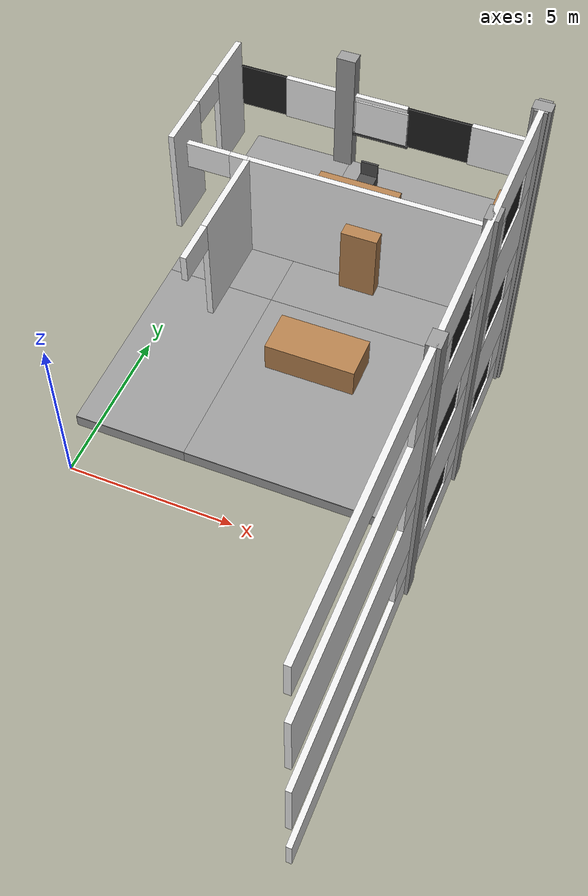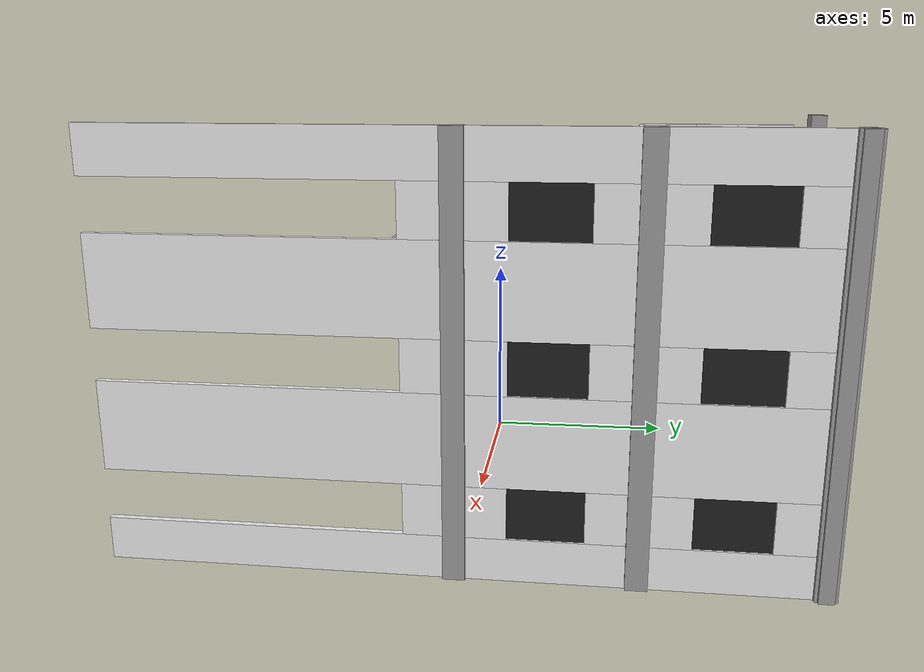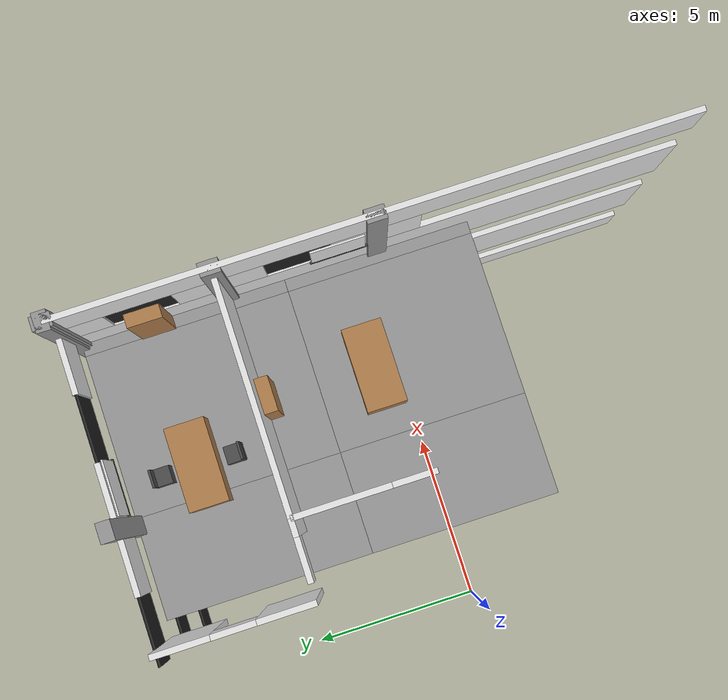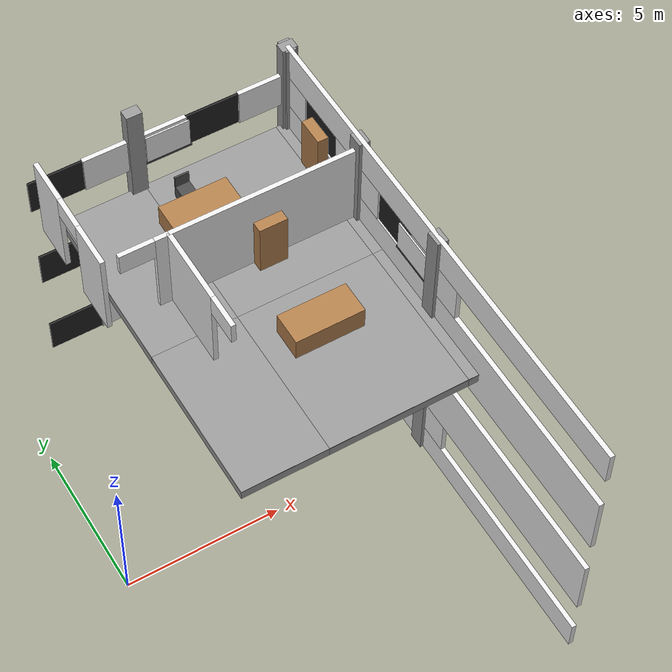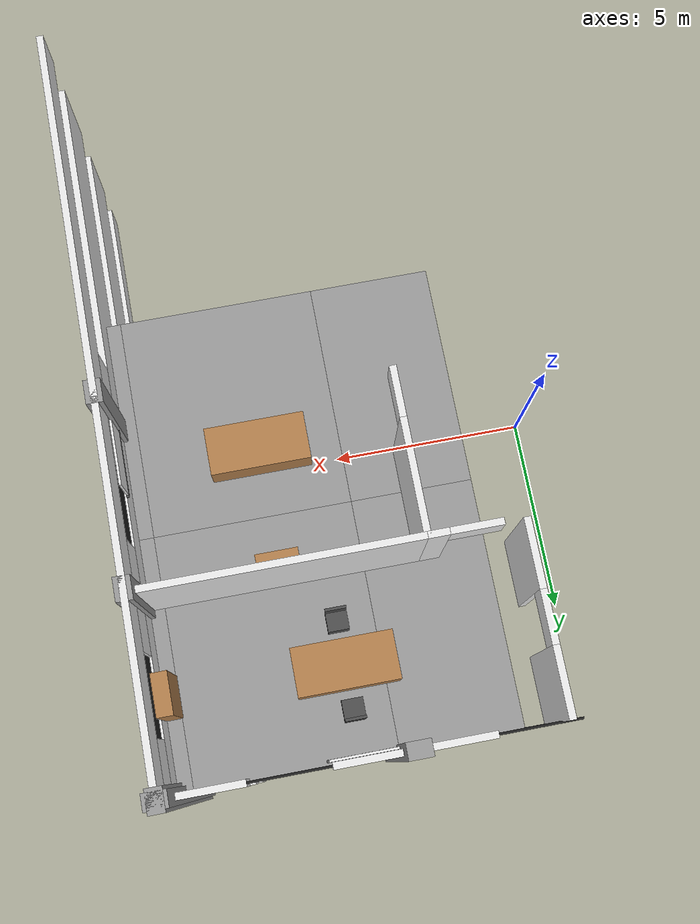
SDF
<sdf version="1.7">
 <world name="default">
  <model name="building_shell">
   <static>1</static>
   <link name="wNm0_3">
    <pose>5 8 1.6 0 0 0</pose>
    <collision name="c"><geometry><box><size>3.3 0.15 1.2</size></box></geometry></collision>
    <visual name="v">
     <geometry><box><size>3.3 0.15 1.2</size></box></geometry>
     <material>
      <script><uri>file://media/materials/scripts/Gazebo.material</uri><name>Gazebo/White</name></script>
     </material>
    </visual>
   </link>
   <link name="wNm0_4">
    <pose>9.175 8 1.6 0 0 0</pose>
    <collision name="c"><geometry><box><size>1.65 0.15 1.2</size></box></geometry></collision>
    <visual name="v">
     <geometry><box><size>1.65 0.15 1.2</size></box></geometry>
     <material>
      <script><uri>file://media/materials/scripts/Gazebo.material</uri><name>Gazebo/White</name></script>
     </material>
    </visual>
   </link>
   <link name="wNg0_2">
    <pose>2.5 8 1.6 0 0 0</pose>
    <collision name="c"><geometry><box><size>1.7 0.05 1.2</size></box></geometry></collision>
    <visual name="v">
     <geometry><box><size>1.7 0.05 1.2</size></box></geometry>
     <material>
      <script><uri>file://media/materials/scripts/Gazebo.material</uri><name>Gazebo/FlatBlack</name></script>
     </material>
    </visual>
   </link>
   <link name="wNg0_3">
    <pose>7.5 8 1.6 0 0 0</pose>
    <collision name="c"><geometry><box><size>1.7 0.05 1.2</size></box></geometry></collision>
    <visual name="v">
     <geometry><box><size>1.7 0.05 1.2</size></box></geometry>
     <material>
      <script><uri>file://media/materials/scripts/Gazebo.material</uri><name>Gazebo/FlatBlack</name></script>
     </material>
    </visual>
   </link>
   <link name="wNm1_3">
    <pose>5 8 4.9 0 0 0</pose>
    <collision name="c"><geometry><box><size>3.3 0.15 1.2</size></box></geometry></collision>
    <visual name="v">
     <geometry><box><size>3.3 0.15 1.2</size></box></geometry>
     <material>
      <script><uri>file://media/materials/scripts/Gazebo.material</uri><name>Gazebo/White</name></script>
     </material>
    </visual>
   </link>
   <link name="wNm1_4">
    <pose>9.175 8 4.9 0 0 0</pose>
    <collision name="c"><geometry><box><size>1.65 0.15 1.2</size></box></geometry></collision>
    <visual name="v">
     <geometry><box><size>1.65 0.15 1.2</size></box></geometry>
     <material>
      <script><uri>file://media/materials/scripts/Gazebo.material</uri><name>Gazebo/White</name></script>
     </material>
    </visual>
   </link>
   <link name="wNg1_2">
    <pose>2.5 8 4.9 0 0 0</pose>
    <collision name="c"><geometry><box><size>1.7 0.05 1.2</size></box></geometry></collision>
    <visual name="v">
     <geometry><box><size>1.7 0.05 1.2</size></box></geometry>
     <material>
      <script><uri>file://media/materials/scripts/Gazebo.material</uri><name>Gazebo/FlatBlack</name></script>
     </material>
    </visual>
   </link>
   <link name="wNg1_3">
    <pose>7.5 8 4.9 0 0 0</pose>
    <collision name="c"><geometry><box><size>1.7 0.05 1.2</size></box></geometry></collision>
    <visual name="v">
     <geometry><box><size>1.7 0.05 1.2</size></box></geometry>
     <material>
      <script><uri>file://media/materials/scripts/Gazebo.material</uri><name>Gazebo/FlatBlack</name></script>
     </material>
    </visual>
   </link>
   <link name="wNm2_3">
    <pose>5 8 8.2 0 0 0</pose>
    <collision name="c"><geometry><box><size>3.3 0.15 1.2</size></box></geometry></collision>
    <visual name="v">
     <geometry><box><size>3.3 0.15 1.2</size></box></geometry>
     <material>
      <script><uri>file://media/materials/scripts/Gazebo.material</uri><name>Gazebo/White</name></script>
     </material>
    </visual>
   </link>
   <link name="wNm2_4">
    <pose>9.175 8 8.2 0 0 0</pose>
    <collision name="c"><geometry><box><size>1.65 0.15 1.2</size></box></geometry></collision>
    <visual name="v">
     <geometry><box><size>1.65 0.15 1.2</size></box></geometry>
     <material>
      <script><uri>file://media/materials/scripts/Gazebo.material</uri><name>Gazebo/White</name></script>
     </material>
    </visual>
   </link>
   <link name="wNg2_2">
    <pose>2.5 8 8.2 0 0 0</pose>
    <collision name="c"><geometry><box><size>1.7 0.05 1.2</size></box></geometry></collision>
    <visual name="v">
     <geometry><box><size>1.7 0.05 1.2</size></box></geometry>
     <material>
      <script><uri>file://media/materials/scripts/Gazebo.material</uri><name>Gazebo/FlatBlack</name></script>
     </material>
    </visual>
   </link>
   <link name="wNg2_3">
    <pose>7.5 8 8.2 0 0 0</pose>
    <collision name="c"><geometry><box><size>1.7 0.05 1.2</size></box></geometry></collision>
    <visual name="v">
     <geometry><box><size>1.7 0.05 1.2</size></box></geometry>
     <material>
      <script><uri>file://media/materials/scripts/Gazebo.material</uri><name>Gazebo/FlatBlack</name></script>
     </material>
    </visual>
   </link>
   <link name="wNpil5">
    <pose>5 8 4.95 0 0 0</pose>
    <collision name="c"><geometry><box><size>0.5 0.35 9.9</size></box></geometry></collision>
    <visual name="v">
     <geometry><box><size>0.5 0.35 9.9</size></box></geometry>
     <material>
      <script><uri>file://media/materials/scripts/Gazebo.material</uri><name>Gazebo/Grey</name></script>
     </material>
    </visual>
   </link>
   <link name="wNpil10">
    <pose>10 8 4.95 0 0 0</pose>
    <collision name="c"><geometry><box><size>0.5 0.35 9.9</size></box></geometry></collision>
    <visual name="v">
     <geometry><box><size>0.5 0.35 9.9</size></box></geometry>
     <material>
      <script><uri>file://media/materials/scripts/Gazebo.material</uri><name>Gazebo/Grey</name></script>
     </material>
    </visual>
   </link>
   <link name="wEsb0_0">
    <pose>10 0 0.5 0 0 0</pose>
    <collision name="c"><geometry><box><size>0.15 16 1</size></box></geometry></collision>
    <visual name="v">
     <geometry><box><size>0.15 16 1</size></box></geometry>
     <material>
      <script><uri>file://media/materials/scripts/Gazebo.material</uri><name>Gazebo/White</name></script>
     </material>
    </visual>
   </link>
   <link name="wEsb1_0">
    <pose>10 0 3.25 0 0 0</pose>
    <collision name="c"><geometry><box><size>0.15 16 2.1</size></box></geometry></collision>
    <visual name="v">
     <geometry><box><size>0.15 16 2.1</size></box></geometry>
     <material>
      <script><uri>file://media/materials/scripts/Gazebo.material</uri><name>Gazebo/White</name></script>
     </material>
    </visual>
   </link>
   <link name="wEsb2_0">
    <pose>10 0 6.55 0 0 0</pose>
    <collision name="c"><geometry><box><size>0.15 16 2.1</size></box></geometry></collision>
    <visual name="v">
     <geometry><box><size>0.15 16 2.1</size></box></geometry>
     <material>
      <script><uri>file://media/materials/scripts/Gazebo.material</uri><name>Gazebo/White</name></script>
     </material>
    </visual>
   </link>
   <link name="wEsb3_0">
    <pose>10 0 9.35 0 0 0</pose>
    <collision name="c"><geometry><box><size>0.15 16 1.1</size></box></geometry></collision>
    <visual name="v">
     <geometry><box><size>0.15 16 1.1</size></box></geometry>
     <material>
      <script><uri>file://media/materials/scripts/Gazebo.material</uri><name>Gazebo/White</name></script>
     </material>
    </visual>
   </link>
   <link name="wEm0_2">
    <pose>10 0 1.6 0 0 0</pose>
    <collision name="c"><geometry><box><size>0.15 2.3 1.2</size></box></geometry></collision>
    <visual name="v">
     <geometry><box><size>0.15 2.3 1.2</size></box></geometry>
     <material>
      <script><uri>file://media/materials/scripts/Gazebo.material</uri><name>Gazebo/White</name></script>
     </material>
    </visual>
   </link>
   <link name="wEm0_3">
    <pose>10 4 1.6 0 0 0</pose>
    <collision name="c"><geometry><box><size>0.15 2.3 1.2</size></box></geometry></collision>
    <visual name="v">
     <geometry><box><size>0.15 2.3 1.2</size></box></geometry>
     <material>
      <script><uri>file://media/materials/scripts/Gazebo.material</uri><name>Gazebo/White</name></script>
     </material>
    </visual>
   </link>
   <link name="wEm0_4">
    <pose>10 7.425 1.6 0 0 0</pose>
    <collision name="c"><geometry><box><size>0.15 1.15 1.2</size></box></geometry></collision>
    <visual name="v">
     <geometry><box><size>0.15 1.15 1.2</size></box></geometry>
     <material>
      <script><uri>file://media/materials/scripts/Gazebo.material</uri><name>Gazebo/White</name></script>
     </material>
    </visual>
   </link>
   <link name="wEg0_2">
    <pose>10 2 1.6 0 0 0</pose>
    <collision name="c"><geometry><box><size>0.05 1.7 1.2</size></box></geometry></collision>
    <visual name="v">
     <geometry><box><size>0.05 1.7 1.2</size></box></geometry>
     <material>
      <script><uri>file://media/materials/scripts/Gazebo.material</uri><name>Gazebo/FlatBlack</name></script>
     </material>
    </visual>
   </link>
   <link name="wEg0_3">
    <pose>10 6 1.6 0 0 0</pose>
    <collision name="c"><geometry><box><size>0.05 1.7 1.2</size></box></geometry></collision>
    <visual name="v">
     <geometry><box><size>0.05 1.7 1.2</size></box></geometry>
     <material>
      <script><uri>file://media/materials/scripts/Gazebo.material</uri><name>Gazebo/FlatBlack</name></script>
     </material>
    </visual>
   </link>
   <link name="wEm1_2">
    <pose>10 0 4.9 0 0 0</pose>
    <collision name="c"><geometry><box><size>0.15 2.3 1.2</size></box></geometry></collision>
    <visual name="v">
     <geometry><box><size>0.15 2.3 1.2</size></box></geometry>
     <material>
      <script><uri>file://media/materials/scripts/Gazebo.material</uri><name>Gazebo/White</name></script>
     </material>
    </visual>
   </link>
   <link name="wEm1_3">
    <pose>10 4 4.9 0 0 0</pose>
    <collision name="c"><geometry><box><size>0.15 2.3 1.2</size></box></geometry></collision>
    <visual name="v">
     <geometry><box><size>0.15 2.3 1.2</size></box></geometry>
     <material>
      <script><uri>file://media/materials/scripts/Gazebo.material</uri><name>Gazebo/White</name></script>
     </material>
    </visual>
   </link>
   <link name="wEm1_4">
    <pose>10 7.425 4.9 0 0 0</pose>
    <collision name="c"><geometry><box><size>0.15 1.15 1.2</size></box></geometry></collision>
    <visual name="v">
     <geometry><box><size>0.15 1.15 1.2</size></box></geometry>
     <material>
      <script><uri>file://media/materials/scripts/Gazebo.material</uri><name>Gazebo/White</name></script>
     </material>
    </visual>
   </link>
   <link name="wEg1_2">
    <pose>10 2 4.9 0 0 0</pose>
    <collision name="c"><geometry><box><size>0.05 1.7 1.2</size></box></geometry></collision>
    <visual name="v">
     <geometry><box><size>0.05 1.7 1.2</size></box></geometry>
     <material>
      <script><uri>file://media/materials/scripts/Gazebo.material</uri><name>Gazebo/FlatBlack</name></script>
     </material>
    </visual>
   </link>
   <link name="wEg1_3">
    <pose>10 6 4.9 0 0 0</pose>
    <collision name="c"><geometry><box><size>0.05 1.7 1.2</size></box></geometry></collision>
    <visual name="v">
     <geometry><box><size>0.05 1.7 1.2</size></box></geometry>
     <material>
      <script><uri>file://media/materials/scripts/Gazebo.material</uri><name>Gazebo/FlatBlack</name></script>
     </material>
    </visual>
   </link>
   <link name="wEm2_2">
    <pose>10 0 8.2 0 0 0</pose>
    <collision name="c"><geometry><box><size>0.15 2.3 1.2</size></box></geometry></collision>
    <visual name="v">
     <geometry><box><size>0.15 2.3 1.2</size></box></geometry>
     <material>
      <script><uri>file://media/materials/scripts/Gazebo.material</uri><name>Gazebo/White</name></script>
     </material>
    </visual>
   </link>
   <link name="wEm2_3">
    <pose>10 4 8.2 0 0 0</pose>
    <collision name="c"><geometry><box><size>0.15 2.3 1.2</size></box></geometry></collision>
    <visual name="v">
     <geometry><box><size>0.15 2.3 1.2</size></box></geometry>
     <material>
      <script><uri>file://media/materials/scripts/Gazebo.material</uri><name>Gazebo/White</name></script>
     </material>
    </visual>
   </link>
   <link name="wEm2_4">
    <pose>10 7.425 8.2 0 0 0</pose>
    <collision name="c"><geometry><box><size>0.15 1.15 1.2</size></box></geometry></collision>
    <visual name="v">
     <geometry><box><size>0.15 1.15 1.2</size></box></geometry>
     <material>
      <script><uri>file://media/materials/scripts/Gazebo.material</uri><name>Gazebo/White</name></script>
     </material>
    </visual>
   </link>
   <link name="wEg2_2">
    <pose>10 2 8.2 0 0 0</pose>
    <collision name="c"><geometry><box><size>0.05 1.7 1.2</size></box></geometry></collision>
    <visual name="v">
     <geometry><box><size>0.05 1.7 1.2</size></box></geometry>
     <material>
      <script><uri>file://media/materials/scripts/Gazebo.material</uri><name>Gazebo/FlatBlack</name></script>
     </material>
    </visual>
   </link>
   <link name="wEg2_3">
    <pose>10 6 8.2 0 0 0</pose>
    <collision name="c"><geometry><box><size>0.05 1.7 1.2</size></box></geometry></collision>
    <visual name="v">
     <geometry><box><size>0.05 1.7 1.2</size></box></geometry>
     <material>
      <script><uri>file://media/materials/scripts/Gazebo.material</uri><name>Gazebo/FlatBlack</name></script>
     </material>
    </visual>
   </link>
   <link name="wEpil0">
    <pose>10 0 4.95 0 0 0</pose>
    <collision name="c"><geometry><box><size>0.35 0.5 9.9</size></box></geometry></collision>
    <visual name="v">
     <geometry><box><size>0.35 0.5 9.9</size></box></geometry>
     <material>
      <script><uri>file://media/materials/scripts/Gazebo.material</uri><name>Gazebo/Grey</name></script>
     </material>
    </visual>
   </link>
   <link name="wEpil4">
    <pose>10 4 4.95 0 0 0</pose>
    <collision name="c"><geometry><box><size>0.35 0.5 9.9</size></box></geometry></collision>
    <visual name="v">
     <geometry><box><size>0.35 0.5 9.9</size></box></geometry>
     <material>
      <script><uri>file://media/materials/scripts/Gazebo.material</uri><name>Gazebo/Grey</name></script>
     </material>
    </visual>
   </link>
   <link name="wEpil8">
    <pose>10 8 4.95 0 0 0</pose>
    <collision name="c"><geometry><box><size>0.35 0.5 9.9</size></box></geometry></collision>
    <visual name="v">
     <geometry><box><size>0.35 0.5 9.9</size></box></geometry>
     <material>
      <script><uri>file://media/materials/scripts/Gazebo.material</uri><name>Gazebo/Grey</name></script>
     </material>
    </visual>
   </link>
  </model>
  <model name="building_L3">
   <static>1</static>
   <link name="floor2_12">
    <pose>3.85 0 6.45 0 0 0</pose>
    <collision name="c"><geometry><box><size>2.7 5 0.3</size></box></geometry></collision>
    <visual name="v">
     <geometry><box><size>2.7 5 0.3</size></box></geometry>
     <material>
      <script><uri>file://media/materials/scripts/Gazebo.material</uri><name>Gazebo/Grey</name></script>
     </material>
    </visual>
   </link>
   <link name="floor2c_12">
    <pose>3.85 0 6.61 0 0 0</pose>
    <collision name="c"><geometry><box><size>2.7 5 0.02</size></box></geometry></collision>
    <visual name="v">
     <geometry><box><size>2.7 5 0.02</size></box></geometry>
     <material>
      <script><uri>file://media/materials/scripts/Gazebo.material</uri><name>Gazebo/Grey</name></script>
     </material>
    </visual>
   </link>
   <link name="floor2_13">
    <pose>3.85 5.25 6.45 0 0 0</pose>
    <collision name="c"><geometry><box><size>2.7 5.5 0.3</size></box></geometry></collision>
    <visual name="v">
     <geometry><box><size>2.7 5.5 0.3</size></box></geometry>
     <material>
      <script><uri>file://media/materials/scripts/Gazebo.material</uri><name>Gazebo/Grey</name></script>
     </material>
    </visual>
   </link>
   <link name="floor2c_13">
    <pose>3.85 5.25 6.61 0 0 0</pose>
    <collision name="c"><geometry><box><size>2.7 5.5 0.02</size></box></geometry></collision>
    <visual name="v">
     <geometry><box><size>2.7 5.5 0.02</size></box></geometry>
     <material>
      <script><uri>file://media/materials/scripts/Gazebo.material</uri><name>Gazebo/Grey</name></script>
     </material>
    </visual>
   </link>
   <link name="floor2_16">
    <pose>7.4 0 6.45 0 0 0</pose>
    <collision name="c"><geometry><box><size>4.4 5 0.3</size></box></geometry></collision>
    <visual name="v">
     <geometry><box><size>4.4 5 0.3</size></box></geometry>
     <material>
      <script><uri>file://media/materials/scripts/Gazebo.material</uri><name>Gazebo/Grey</name></script>
     </material>
    </visual>
   </link>
   <link name="floor2c_16">
    <pose>7.4 0 6.61 0 0 0</pose>
    <collision name="c"><geometry><box><size>4.4 5 0.02</size></box></geometry></collision>
    <visual name="v">
     <geometry><box><size>4.4 5 0.02</size></box></geometry>
     <material>
      <script><uri>file://media/materials/scripts/Gazebo.material</uri><name>Gazebo/Grey</name></script>
     </material>
    </visual>
   </link>
   <link name="floor2_17">
    <pose>7.4 5.25 6.45 0 0 0</pose>
    <collision name="c"><geometry><box><size>4.4 5.5 0.3</size></box></geometry></collision>
    <visual name="v">
     <geometry><box><size>4.4 5.5 0.3</size></box></geometry>
     <material>
      <script><uri>file://media/materials/scripts/Gazebo.material</uri><name>Gazebo/Grey</name></script>
     </material>
    </visual>
   </link>
   <link name="floor2c_17">
    <pose>7.4 5.25 6.61 0 0 0</pose>
    <collision name="c"><geometry><box><size>4.4 5.5 0.02</size></box></geometry></collision>
    <visual name="v">
     <geometry><box><size>4.4 5.5 0.02</size></box></geometry>
     <material>
      <script><uri>file://media/materials/scripts/Gazebo.material</uri><name>Gazebo/Grey</name></script>
     </material>
    </visual>
   </link>
   <link name="floor2_21">
    <pose>9.8 0 6.45 0 0 0</pose>
    <collision name="c"><geometry><box><size>0.4 5 0.3</size></box></geometry></collision>
    <visual name="v">
     <geometry><box><size>0.4 5 0.3</size></box></geometry>
     <material>
      <script><uri>file://media/materials/scripts/Gazebo.material</uri><name>Gazebo/Grey</name></script>
     </material>
    </visual>
   </link>
   <link name="floor2c_21">
    <pose>9.8 0 6.61 0 0 0</pose>
    <collision name="c"><geometry><box><size>0.4 5 0.02</size></box></geometry></collision>
    <visual name="v">
     <geometry><box><size>0.4 5 0.02</size></box></geometry>
     <material>
      <script><uri>file://media/materials/scripts/Gazebo.material</uri><name>Gazebo/Grey</name></script>
     </material>
    </visual>
   </link>
   <link name="floor2_22">
    <pose>9.8 5.25 6.45 0 0 0</pose>
    <collision name="c"><geometry><box><size>0.4 5.5 0.3</size></box></geometry></collision>
    <visual name="v">
     <geometry><box><size>0.4 5.5 0.3</size></box></geometry>
     <material>
      <script><uri>file://media/materials/scripts/Gazebo.material</uri><name>Gazebo/Grey</name></script>
     </material>
    </visual>
   </link>
   <link name="floor2c_22">
    <pose>9.8 5.25 6.61 0 0 0</pose>
    <collision name="c"><geometry><box><size>0.4 5.5 0.02</size></box></geometry></collision>
    <visual name="v">
     <geometry><box><size>0.4 5.5 0.02</size></box></geometry>
     <material>
      <script><uri>file://media/materials/scripts/Gazebo.material</uri><name>Gazebo/Grey</name></script>
     </material>
    </visual>
   </link>
   <link name="w2_0_2">
    <pose>3.775 4 8.05 0 0 0</pose>
    <collision name="c"><geometry><box><size>0.45 0.15 2.9</size></box></geometry></collision>
    <visual name="v">
     <geometry><box><size>0.45 0.15 2.9</size></box></geometry>
     <material>
      <script><uri>file://media/materials/scripts/Gazebo.material</uri><name>Gazebo/White</name></script>
     </material>
    </visual>
   </link>
   <link name="w2_0_L1">
    <pose>3 4 9.15 0 0 0</pose>
    <collision name="c"><geometry><box><size>1.1 0.15 0.7</size></box></geometry></collision>
    <visual name="v">
     <geometry><box><size>1.1 0.15 0.7</size></box></geometry>
     <material>
      <script><uri>file://media/materials/scripts/Gazebo.material</uri><name>Gazebo/White</name></script>
     </material>
    </visual>
   </link>
   <link name="w2_3_2">
    <pose>4 2.775 8.05 0 0 0</pose>
    <collision name="c"><geometry><box><size>0.15 2.45 2.9</size></box></geometry></collision>
    <visual name="v">
     <geometry><box><size>0.15 2.45 2.9</size></box></geometry>
     <material>
      <script><uri>file://media/materials/scripts/Gazebo.material</uri><name>Gazebo/White</name></script>
     </material>
    </visual>
   </link>
   <link name="w2_3_L0">
    <pose>4 1 9.15 0 0 0</pose>
    <collision name="c"><geometry><box><size>0.15 1.1 0.7</size></box></geometry></collision>
    <visual name="v">
     <geometry><box><size>0.15 1.1 0.7</size></box></geometry>
     <material>
      <script><uri>file://media/materials/scripts/Gazebo.material</uri><name>Gazebo/White</name></script>
     </material>
    </visual>
   </link>
   <link name="w2_4_0">
    <pose>7 4 8.05 0 0 0</pose>
    <collision name="c"><geometry><box><size>6 0.15 2.9</size></box></geometry></collision>
    <visual name="v">
     <geometry><box><size>6 0.15 2.9</size></box></geometry>
     <material>
      <script><uri>file://media/materials/scripts/Gazebo.material</uri><name>Gazebo/White</name></script>
     </material>
    </visual>
   </link>
   <link name="w2_8_0">
    <pose>2 4.725 8.05 0 0 0</pose>
    <collision name="c"><geometry><box><size>0.15 1.45 2.9</size></box></geometry></collision>
    <visual name="v">
     <geometry><box><size>0.15 1.45 2.9</size></box></geometry>
     <material>
      <script><uri>file://media/materials/scripts/Gazebo.material</uri><name>Gazebo/White</name></script>
     </material>
    </visual>
   </link>
   <link name="w2_8_1">
    <pose>2 7.275 8.05 0 0 0</pose>
    <collision name="c"><geometry><box><size>0.15 1.45 2.9</size></box></geometry></collision>
    <visual name="v">
     <geometry><box><size>0.15 1.45 2.9</size></box></geometry>
     <material>
      <script><uri>file://media/materials/scripts/Gazebo.material</uri><name>Gazebo/White</name></script>
     </material>
    </visual>
   </link>
   <link name="w2_8_L0">
    <pose>2 6 9.15 0 0 0</pose>
    <collision name="c"><geometry><box><size>0.15 1.1 0.7</size></box></geometry></collision>
    <visual name="v">
     <geometry><box><size>0.15 1.1 0.7</size></box></geometry>
     <material>
      <script><uri>file://media/materials/scripts/Gazebo.material</uri><name>Gazebo/White</name></script>
     </material>
    </visual>
   </link>
   <link name="f2_N2mtt">
    <pose>6 6 6.98 0 0 0</pose>
    <collision name="c"><geometry><box><size>2.2 1.05 0.76</size></box></geometry></collision>
    <visual name="v">
     <geometry><box><size>2.2 1.05 0.76</size></box></geometry>
     <material>
      <script><uri>file://media/materials/scripts/Gazebo.material</uri><name>Gazebo/Wood</name></script>
     </material>
    </visual>
   </link>
   <link name="f2_N2c2s">
    <pose>6 5.05 6.84 0 0 0</pose>
    <collision name="c"><geometry><box><size>0.46 0.46 0.48</size></box></geometry></collision>
    <visual name="v">
     <geometry><box><size>0.46 0.46 0.48</size></box></geometry>
     <material>
      <script><uri>file://media/materials/scripts/Gazebo.material</uri><name>Gazebo/DarkGrey</name></script>
     </material>
    </visual>
   </link>
   <link name="f2_N2c2b">
    <pose>6 4.85 7.2 0 0 0</pose>
    <collision name="c"><geometry><box><size>0.46 0.06 0.55</size></box></geometry></collision>
    <visual name="v">
     <geometry><box><size>0.46 0.06 0.55</size></box></geometry>
     <material>
      <script><uri>file://media/materials/scripts/Gazebo.material</uri><name>Gazebo/DarkGrey</name></script>
     </material>
    </visual>
   </link>
   <link name="f2_N2c3s">
    <pose>6 6.95 6.84 0 0 0</pose>
    <collision name="c"><geometry><box><size>0.46 0.46 0.48</size></box></geometry></collision>
    <visual name="v">
     <geometry><box><size>0.46 0.46 0.48</size></box></geometry>
     <material>
      <script><uri>file://media/materials/scripts/Gazebo.material</uri><name>Gazebo/DarkGrey</name></script>
     </material>
    </visual>
   </link>
   <link name="f2_N2c3b">
    <pose>6 7.15 7.2 0 0 0</pose>
    <collision name="c"><geometry><box><size>0.46 0.06 0.55</size></box></geometry></collision>
    <visual name="v">
     <geometry><box><size>0.46 0.06 0.55</size></box></geometry>
     <material>
      <script><uri>file://media/materials/scripts/Gazebo.material</uri><name>Gazebo/DarkGrey</name></script>
     </material>
    </visual>
   </link>
   <link name="f2_N2bsf">
    <pose>9.75 6 7.5 0 0 0</pose>
    <collision name="c"><geometry><box><size>0.35 0.9 1.8</size></box></geometry></collision>
    <visual name="v">
     <geometry><box><size>0.35 0.9 1.8</size></box></geometry>
     <material>
      <script><uri>file://media/materials/scripts/Gazebo.material</uri><name>Gazebo/Wood</name></script>
     </material>
    </visual>
   </link>
   <link name="f2_N2bsb0">
    <pose>9.75 6 7.05 0 0 0</pose>
    <collision name="c"><geometry><box><size>0.28 0.8 0.32</size></box></geometry></collision>
    <visual name="v">
     <geometry><box><size>0.28 0.8 0.32</size></box></geometry>
     <material>
      <script><uri>file://media/materials/scripts/Gazebo.material</uri><name>Gazebo/Grey</name></script>
     </material>
    </visual>
   </link>
   <link name="f2_N2bsb1">
    <pose>9.75 6 7.55 0 0 0</pose>
    <collision name="c"><geometry><box><size>0.28 0.8 0.32</size></box></geometry></collision>
    <visual name="v">
     <geometry><box><size>0.28 0.8 0.32</size></box></geometry>
     <material>
      <script><uri>file://media/materials/scripts/Gazebo.material</uri><name>Gazebo/Grey</name></script>
     </material>
    </visual>
   </link>
   <link name="f2_N2bsb2">
    <pose>9.75 6 8.05 0 0 0</pose>
    <collision name="c"><geometry><box><size>0.28 0.8 0.32</size></box></geometry></collision>
    <visual name="v">
     <geometry><box><size>0.28 0.8 0.32</size></box></geometry>
     <material>
      <script><uri>file://media/materials/scripts/Gazebo.material</uri><name>Gazebo/Grey</name></script>
     </material>
    </visual>
   </link>
   <link name="f2_N2wbw">
    <pose>6 7.895 8.2 0 0 0</pose>
    <collision name="c"><geometry><box><size>1.4 0.05 1</size></box></geometry></collision>
    <visual name="v">
     <geometry><box><size>1.4 0.05 1</size></box></geometry>
     <material>
      <script><uri>file://media/materials/scripts/Gazebo.material</uri><name>Gazebo/White</name></script>
     </material>
    </visual>
   </link>
   <link name="f2_N2wbf">
    <pose>6 7.895 7.65 0 0 0</pose>
    <collision name="c"><geometry><box><size>1.5 0.06 0.06</size></box></geometry></collision>
    <visual name="v">
     <geometry><box><size>1.5 0.06 0.06</size></box></geometry>
     <material>
      <script><uri>file://media/materials/scripts/Gazebo.material</uri><name>Gazebo/DarkGrey</name></script>
     </material>
    </visual>
   </link>
   <link name="f2_E1mtt">
    <pose>7 1 6.98 0 0 0</pose>
    <collision name="c"><geometry><box><size>2.2 1.05 0.76</size></box></geometry></collision>
    <visual name="v">
     <geometry><box><size>2.2 1.05 0.76</size></box></geometry>
     <material>
      <script><uri>file://media/materials/scripts/Gazebo.material</uri><name>Gazebo/Wood</name></script>
     </material>
    </visual>
   </link>
   <link name="f2_E1bsf">
    <pose>7 3.75 7.5 0 0 0</pose>
    <collision name="c"><geometry><box><size>0.9 0.35 1.8</size></box></geometry></collision>
    <visual name="v">
     <geometry><box><size>0.9 0.35 1.8</size></box></geometry>
     <material>
      <script><uri>file://media/materials/scripts/Gazebo.material</uri><name>Gazebo/Wood</name></script>
     </material>
    </visual>
   </link>
   <link name="f2_E1bsb0">
    <pose>7 3.75 7.05 0 0 0</pose>
    <collision name="c"><geometry><box><size>0.8 0.28 0.32</size></box></geometry></collision>
    <visual name="v">
     <geometry><box><size>0.8 0.28 0.32</size></box></geometry>
     <material>
      <script><uri>file://media/materials/scripts/Gazebo.material</uri><name>Gazebo/Grey</name></script>
     </material>
    </visual>
   </link>
   <link name="f2_E1bsb1">
    <pose>7 3.75 7.55 0 0 0</pose>
    <collision name="c"><geometry><box><size>0.8 0.28 0.32</size></box></geometry></collision>
    <visual name="v">
     <geometry><box><size>0.8 0.28 0.32</size></box></geometry>
     <material>
      <script><uri>file://media/materials/scripts/Gazebo.material</uri><name>Gazebo/Grey</name></script>
     </material>
    </visual>
   </link>
   <link name="f2_E1bsb2">
    <pose>7 3.75 8.05 0 0 0</pose>
    <collision name="c"><geometry><box><size>0.8 0.28 0.32</size></box></geometry></collision>
    <visual name="v">
     <geometry><box><size>0.8 0.28 0.32</size></box></geometry>
     <material>
      <script><uri>file://media/materials/scripts/Gazebo.material</uri><name>Gazebo/Grey</name></script>
     </material>
    </visual>
   </link>
   <link name="f2_E1wbw">
    <pose>9.895 1 8.2 0 0 0</pose>
    <collision name="c"><geometry><box><size>0.05 1.4 1</size></box></geometry></collision>
    <visual name="v">
     <geometry><box><size>0.05 1.4 1</size></box></geometry>
     <material>
      <script><uri>file://media/materials/scripts/Gazebo.material</uri><name>Gazebo/White</name></script>
     </material>
    </visual>
   </link>
   <link name="f2_E1wbf">
    <pose>9.895 1 7.65 0 0 0</pose>
    <collision name="c"><geometry><box><size>0.06 1.5 0.06</size></box></geometry></collision>
    <visual name="v">
     <geometry><box><size>0.06 1.5 0.06</size></box></geometry>
     <material>
      <script><uri>file://media/materials/scripts/Gazebo.material</uri><name>Gazebo/DarkGrey</name></script>
     </material>
    </visual>
   </link>
  </model>
 </world>
</sdf>
